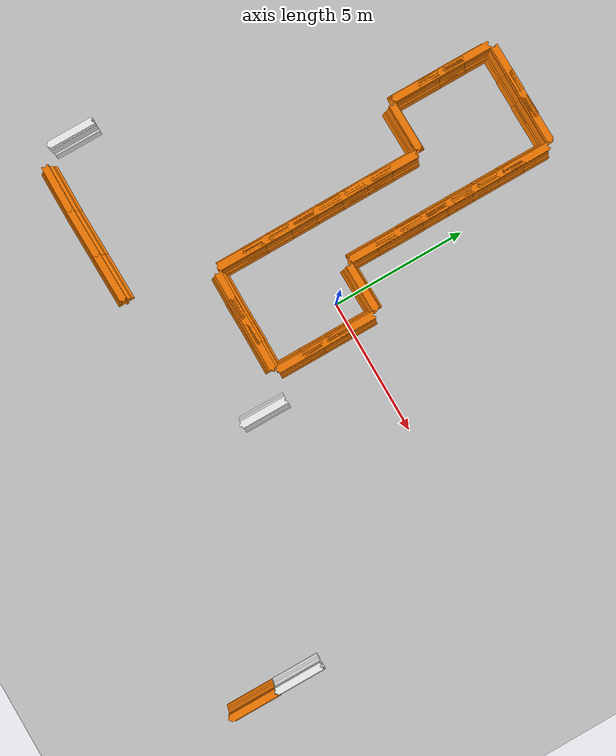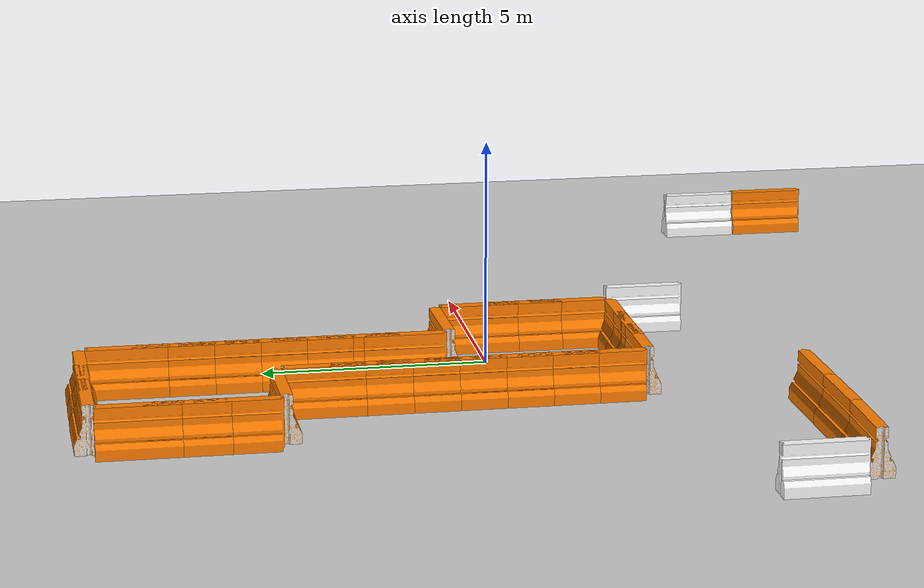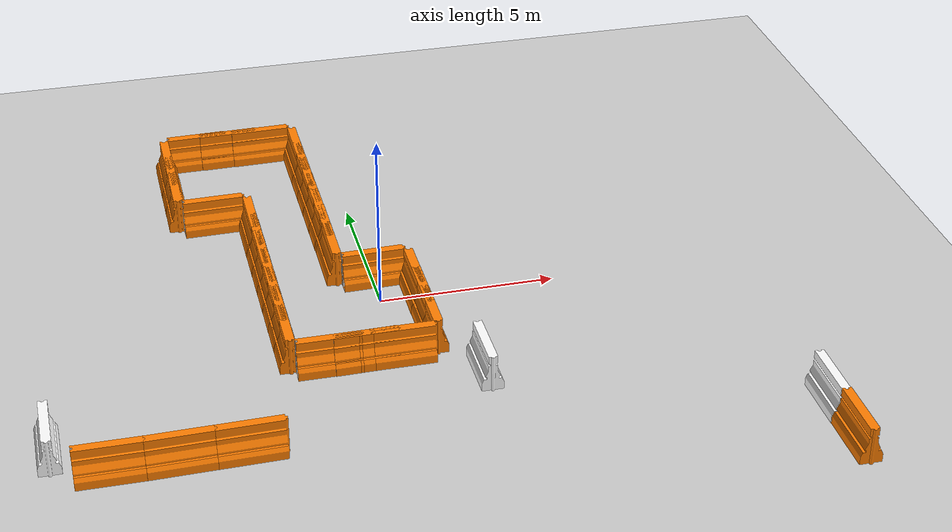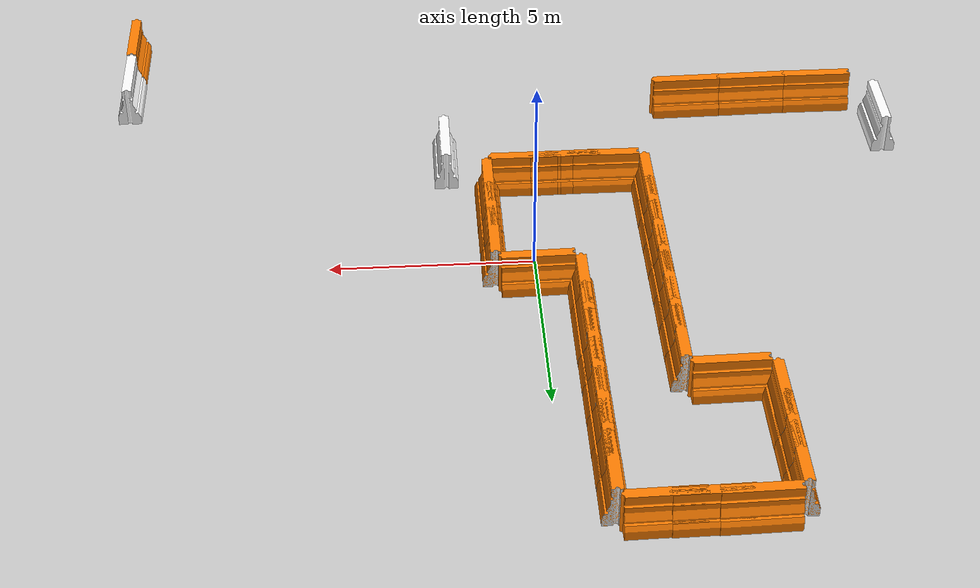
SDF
<sdf version="1.6">
 <world name="default">
  <light name="sun" type="directional">
   <pose>0 0 10 0 -0 0</pose>
   <diffuse>0.8 0.8 0.8 1</diffuse>
   <specular>0.2 0.2 0.2 1</specular>
   <attenuation>
    <range>1000</range>
    <constant>0.9</constant>
    <linear>0.01</linear>
    <quadratic>0.001</quadratic>
   </attenuation>
   <direction>-0.5 0.1 -0.9</direction>
  </light>
  <model name="ground_plane">
   <static>1</static>
   <link name="link">
    <collision name="collision">
     <geometry><plane><normal>0 0 1</normal><size>100 100</size></plane></geometry>
     <surface><friction><ode><mu>100</mu><mu2>50</mu2></ode></friction></surface>
    </collision>
    <visual name="visual">
     <cast_shadows>0</cast_shadows>
     <geometry><plane><normal>0 0 1</normal><size>100 100</size></plane></geometry>
     <material>
      <script><uri>file://media/materials/scripts/gazebo.material</uri><name>Gazebo/Grey</name></script>
     </material>
    </visual>
    <velocity_decay><linear>0</linear><angular>0</angular></velocity_decay>
   </link>
  </model>
  <physics name="default_physics" default="0" type="ode">
   <max_step_size>0.001</max_step_size>
   <real_time_factor>1</real_time_factor>
   <real_time_update_rate>1000</real_time_update_rate>
  </physics>
  <scene><ambient>0.4 0.4 0.4 1</ambient><background>0.7 0.7 0.7 1</background><shadows>1</shadows></scene>
  <spherical_coordinates>
   <surface_model>EARTH_WGS84</surface_model>
   <latitude_deg>0</latitude_deg>
   <longitude_deg>0</longitude_deg>
   <elevation>0</elevation>
   <heading_deg>0</heading_deg>
  </spherical_coordinates>
  <model name="drc_practice_organge_jersey_barrier">
   <static>1</static>
   <link name="link">
    <visual name="visual">
     <geometry>
      <mesh><uri>model://drc_practice_orange_jersey_barrier/meshes/jersey_barrier.dae</uri></mesh>
     </geometry>
    </visual>
    <collision name="collision">
     <geometry>
      <mesh><uri>model://drc_practice_orange_jersey_barrier/meshes/jersey_barrier.dae</uri></mesh>
     </geometry>
    </collision>
    <velocity_decay><linear>0</linear><angular>0</angular></velocity_decay>
   </link>
   <pose>-4.54889 -6.23392 0 0 -0 1.59364</pose>
  </model>
  <model name="drc_practice_white_jersey_barrier">
   <static>1</static>
   <link name="link">
    <visual name="visual">
     <geometry>
      <mesh><uri>model://drc_practice_white_jersey_barrier/meshes/jersey_barrier.dae</uri></mesh>
     </geometry>
    </visual>
    <collision name="collision">
     <geometry>
      <mesh><uri>model://drc_practice_white_jersey_barrier/meshes/jersey_barrier.dae</uri></mesh>
     </geometry>
    </collision>
    <velocity_decay><linear>0</linear><angular>0</angular></velocity_decay>
   </link>
   <pose>-9.48699 -4.9367 0 0 -0 0</pose>
  </model>
  <model name="drc_practice_organge_jersey_barrier_0">
   <static>1</static>
   <link name="link">
    <visual name="visual">
     <geometry>
      <mesh><uri>model://drc_practice_orange_jersey_barrier/meshes/jersey_barrier.dae</uri></mesh>
     </geometry>
    </visual>
    <collision name="collision">
     <geometry>
      <mesh><uri>model://drc_practice_orange_jersey_barrier/meshes/jersey_barrier.dae</uri></mesh>
     </geometry>
    </collision>
    <velocity_decay><linear>0</linear><angular>0</angular></velocity_decay>
   </link>
   <pose>-6.30934 -6.26351 0 0 -0 1.59467</pose>
  </model>
  <model name="drc_practice_organge_jersey_barrier_1">
   <static>1</static>
   <link name="link">
    <visual name="visual">
     <geometry>
      <mesh><uri>model://drc_practice_orange_jersey_barrier/meshes/jersey_barrier.dae</uri></mesh>
     </geometry>
    </visual>
    <collision name="collision">
     <geometry>
      <mesh><uri>model://drc_practice_orange_jersey_barrier/meshes/jersey_barrier.dae</uri></mesh>
     </geometry>
    </collision>
    <velocity_decay><linear>0</linear><angular>0</angular></velocity_decay>
   </link>
   <pose>-8.06556 -6.2736 0 0 -0 1.57109</pose>
  </model>
  <model name="drc_practice_white_jersey_barrier_0">
   <static>1</static>
   <link name="link">
    <visual name="visual">
     <geometry>
      <mesh><uri>model://drc_practice_white_jersey_barrier/meshes/jersey_barrier.dae</uri></mesh>
     </geometry>
    </visual>
    <collision name="collision">
     <geometry>
      <mesh><uri>model://drc_practice_white_jersey_barrier/meshes/jersey_barrier.dae</uri></mesh>
     </geometry>
    </collision>
    <velocity_decay><linear>0</linear><angular>0</angular></velocity_decay>
   </link>
   <pose>10.3176 -7.4365 0 0 -0 0</pose>
  </model>
  <model name="drc_practice_organge_jersey_barrier_2">
   <static>1</static>
   <link name="link">
    <visual name="visual">
     <geometry>
      <mesh><uri>model://drc_practice_orange_jersey_barrier/meshes/jersey_barrier.dae</uri></mesh>
     </geometry>
    </visual>
    <collision name="collision">
     <geometry>
      <mesh><uri>model://drc_practice_orange_jersey_barrier/meshes/jersey_barrier.dae</uri></mesh>
     </geometry>
    </collision>
    <velocity_decay><linear>0</linear><angular>0</angular></velocity_decay>
   </link>
   <pose>10.3218 -9.21435 0 0 -0 0</pose>
  </model>
  <gravity>0 0 -9.8</gravity>
  <magnetic_field>6e-06 2.3e-05 -4.2e-05</magnetic_field>
  <atmosphere type="adiabatic"/>
  <model name="drc_practice_white_jersey_barrier_0_clone">
   <static>1</static>
   <link name="link">
    <visual name="visual">
     <geometry>
      <mesh><uri>model://drc_practice_white_jersey_barrier/meshes/jersey_barrier.dae</uri></mesh>
     </geometry>
    </visual>
    <collision name="collision">
     <geometry>
      <mesh><uri>model://drc_practice_white_jersey_barrier/meshes/jersey_barrier.dae</uri></mesh>
     </geometry>
    </collision>
    <velocity_decay><linear>0</linear><angular>0</angular></velocity_decay>
   </link>
   <pose>2 -4 0 0 -0 0</pose>
  </model>
  <model name="drc_practice_organge_jersey_barrier_1_clone">
   <static>1</static>
   <link name="link">
    <visual name="visual">
     <geometry>
      <mesh><uri>model://drc_practice_orange_jersey_barrier/meshes/jersey_barrier.dae</uri></mesh>
     </geometry>
    </visual>
    <collision name="collision">
     <geometry>
      <mesh><uri>model://drc_practice_orange_jersey_barrier/meshes/jersey_barrier.dae</uri></mesh>
     </geometry>
    </collision>
    <velocity_decay><linear>0</linear><angular>0</angular></velocity_decay>
   </link>
   <pose>0 -3 0 0 -0 1.57109</pose>
  </model>
  <model name="drc_practice_organge_jersey_barrier_1_clone_0">
   <static>1</static>
   <link name="link">
    <visual name="visual">
     <geometry>
      <mesh><uri>model://drc_practice_orange_jersey_barrier/meshes/jersey_barrier.dae</uri></mesh>
     </geometry>
    </visual>
    <collision name="collision">
     <geometry>
      <mesh><uri>model://drc_practice_orange_jersey_barrier/meshes/jersey_barrier.dae</uri></mesh>
     </geometry>
    </collision>
    <velocity_decay><linear>0</linear><angular>0</angular></velocity_decay>
   </link>
   <pose>-2 -3 0 0 -0 1.57109</pose>
  </model>
  <model name="drc_practice_organge_jersey_barrier_2_clone">
   <static>1</static>
   <link name="link">
    <visual name="visual">
     <geometry>
      <mesh><uri>model://drc_practice_orange_jersey_barrier/meshes/jersey_barrier.dae</uri></mesh>
     </geometry>
    </visual>
    <collision name="collision">
     <geometry>
      <mesh><uri>model://drc_practice_orange_jersey_barrier/meshes/jersey_barrier.dae</uri></mesh>
     </geometry>
    </collision>
    <velocity_decay><linear>0</linear><angular>0</angular></velocity_decay>
   </link>
   <pose>-3 -2 0 0 -0 0</pose>
  </model>
  <model name="drc_practice_organge_jersey_barrier_2_clone_0">
   <static>1</static>
   <link name="link">
    <visual name="visual">
     <geometry>
      <mesh><uri>model://drc_practice_orange_jersey_barrier/meshes/jersey_barrier.dae</uri></mesh>
     </geometry>
    </visual>
    <collision name="collision">
     <geometry>
      <mesh><uri>model://drc_practice_orange_jersey_barrier/meshes/jersey_barrier.dae</uri></mesh>
     </geometry>
    </collision>
    <velocity_decay><linear>0</linear><angular>0</angular></velocity_decay>
   </link>
   <pose>-3 0 0 0 -0 0</pose>
  </model>
  <model name="drc_practice_organge_jersey_barrier_2_clone_1">
   <static>1</static>
   <link name="link">
    <visual name="visual">
     <geometry>
      <mesh><uri>model://drc_practice_orange_jersey_barrier/meshes/jersey_barrier.dae</uri></mesh>
     </geometry>
    </visual>
    <collision name="collision">
     <geometry>
      <mesh><uri>model://drc_practice_orange_jersey_barrier/meshes/jersey_barrier.dae</uri></mesh>
     </geometry>
    </collision>
    <velocity_decay><linear>0</linear><angular>0</angular></velocity_decay>
   </link>
   <pose>1 -2 0 0 -0 0</pose>
  </model>
  <model name="drc_practice_organge_jersey_barrier_2_clone_2">
   <static>1</static>
   <link name="link">
    <visual name="visual">
     <geometry>
      <mesh><uri>model://drc_practice_orange_jersey_barrier/meshes/jersey_barrier.dae</uri></mesh>
     </geometry>
    </visual>
    <collision name="collision">
     <geometry>
      <mesh><uri>model://drc_practice_orange_jersey_barrier/meshes/jersey_barrier.dae</uri></mesh>
     </geometry>
    </collision>
    <velocity_decay><linear>0</linear><angular>0</angular></velocity_decay>
   </link>
   <pose>1 0 0 0 -0 0</pose>
  </model>
  <model name="drc_practice_organge_jersey_barrier_clone">
   <static>1</static>
   <link name="link">
    <visual name="visual">
     <geometry>
      <mesh><uri>model://drc_practice_orange_jersey_barrier/meshes/jersey_barrier.dae</uri></mesh>
     </geometry>
    </visual>
    <collision name="collision">
     <geometry>
      <mesh><uri>model://drc_practice_orange_jersey_barrier/meshes/jersey_barrier.dae</uri></mesh>
     </geometry>
    </collision>
    <velocity_decay><linear>0</linear><angular>0</angular></velocity_decay>
   </link>
   <pose>0 1 0 0 -0 1.59364</pose>
  </model>
  <model name="drc_practice_organge_jersey_barrier_2_clone_3">
   <static>1</static>
   <link name="link">
    <visual name="visual">
     <geometry>
      <mesh><uri>model://drc_practice_orange_jersey_barrier/meshes/jersey_barrier.dae</uri></mesh>
     </geometry>
    </visual>
    <collision name="collision">
     <geometry>
      <mesh><uri>model://drc_practice_orange_jersey_barrier/meshes/jersey_barrier.dae</uri></mesh>
     </geometry>
    </collision>
    <velocity_decay><linear>0</linear><angular>0</angular></velocity_decay>
   </link>
   <pose>-3 2 0 0 -0 0</pose>
  </model>
  <model name="drc_practice_organge_jersey_barrier_2_clone_4">
   <static>1</static>
   <link name="link">
    <visual name="visual">
     <geometry>
      <mesh><uri>model://drc_practice_orange_jersey_barrier/meshes/jersey_barrier.dae</uri></mesh>
     </geometry>
    </visual>
    <collision name="collision">
     <geometry>
      <mesh><uri>model://drc_practice_orange_jersey_barrier/meshes/jersey_barrier.dae</uri></mesh>
     </geometry>
    </collision>
    <velocity_decay><linear>0</linear><angular>0</angular></velocity_decay>
   </link>
   <pose>-1 2 0 0 -0 0</pose>
  </model>
  <model name="drc_practice_organge_jersey_barrier_2_clone_5">
   <static>1</static>
   <link name="link">
    <visual name="visual">
     <geometry>
      <mesh><uri>model://drc_practice_orange_jersey_barrier/meshes/jersey_barrier.dae</uri></mesh>
     </geometry>
    </visual>
    <collision name="collision">
     <geometry>
      <mesh><uri>model://drc_practice_orange_jersey_barrier/meshes/jersey_barrier.dae</uri></mesh>
     </geometry>
    </collision>
    <velocity_decay><linear>0</linear><angular>0</angular></velocity_decay>
   </link>
   <pose>-3 4 0 0 -0 0</pose>
  </model>
  <model name="drc_practice_organge_jersey_barrier_2_clone_6">
   <static>1</static>
   <link name="link">
    <visual name="visual">
     <geometry>
      <mesh><uri>model://drc_practice_orange_jersey_barrier/meshes/jersey_barrier.dae</uri></mesh>
     </geometry>
    </visual>
    <collision name="collision">
     <geometry>
      <mesh><uri>model://drc_practice_orange_jersey_barrier/meshes/jersey_barrier.dae</uri></mesh>
     </geometry>
    </collision>
    <velocity_decay><linear>0</linear><angular>0</angular></velocity_decay>
   </link>
   <pose>-1 4 0 0 -0 0</pose>
  </model>
  <model name="drc_practice_organge_jersey_barrier_clone_0">
   <static>1</static>
   <link name="link">
    <visual name="visual">
     <geometry>
      <mesh><uri>model://drc_practice_orange_jersey_barrier/meshes/jersey_barrier.dae</uri></mesh>
     </geometry>
    </visual>
    <collision name="collision">
     <geometry>
      <mesh><uri>model://drc_practice_orange_jersey_barrier/meshes/jersey_barrier.dae</uri></mesh>
     </geometry>
    </collision>
    <velocity_decay><linear>0</linear><angular>0</angular></velocity_decay>
   </link>
   <pose>-4 5 0 0 -0 1.59364</pose>
  </model>
  <model name="drc_practice_organge_jersey_barrier_2_clone_7">
   <static>1</static>
   <link name="link">
    <visual name="visual">
     <geometry>
      <mesh><uri>model://drc_practice_orange_jersey_barrier/meshes/jersey_barrier.dae</uri></mesh>
     </geometry>
    </visual>
    <collision name="collision">
     <geometry>
      <mesh><uri>model://drc_practice_orange_jersey_barrier/meshes/jersey_barrier.dae</uri></mesh>
     </geometry>
    </collision>
    <velocity_decay><linear>0</linear><angular>0</angular></velocity_decay>
   </link>
   <pose>-5 6 0 0 -0 0</pose>
  </model>
  <model name="drc_practice_organge_jersey_barrier_2_clone_8">
   <static>1</static>
   <link name="link">
    <visual name="visual">
     <geometry>
      <mesh><uri>model://drc_practice_orange_jersey_barrier/meshes/jersey_barrier.dae</uri></mesh>
     </geometry>
    </visual>
    <collision name="collision">
     <geometry>
      <mesh><uri>model://drc_practice_orange_jersey_barrier/meshes/jersey_barrier.dae</uri></mesh>
     </geometry>
    </collision>
    <velocity_decay><linear>0</linear><angular>0</angular></velocity_decay>
   </link>
   <pose>-5 8 0 0 -0 0</pose>
  </model>
  <model name="drc_practice_organge_jersey_barrier_clone_1">
   <static>1</static>
   <link name="link">
    <visual name="visual">
     <geometry>
      <mesh><uri>model://drc_practice_orange_jersey_barrier/meshes/jersey_barrier.dae</uri></mesh>
     </geometry>
    </visual>
    <collision name="collision">
     <geometry>
      <mesh><uri>model://drc_practice_orange_jersey_barrier/meshes/jersey_barrier.dae</uri></mesh>
     </geometry>
    </collision>
    <velocity_decay><linear>0</linear><angular>0</angular></velocity_decay>
   </link>
   <pose>-4 9 0 0 -0 1.59364</pose>
  </model>
  <model name="drc_practice_organge_jersey_barrier_clone_2">
   <static>1</static>
   <link name="link">
    <visual name="visual">
     <geometry>
      <mesh><uri>model://drc_practice_orange_jersey_barrier/meshes/jersey_barrier.dae</uri></mesh>
     </geometry>
    </visual>
    <collision name="collision">
     <geometry>
      <mesh><uri>model://drc_practice_orange_jersey_barrier/meshes/jersey_barrier.dae</uri></mesh>
     </geometry>
    </collision>
    <velocity_decay><linear>0</linear><angular>0</angular></velocity_decay>
   </link>
   <pose>-2 9 0 0 -0 1.59364</pose>
  </model>
  <model name="drc_practice_organge_jersey_barrier_2_clone_2_clone">
   <static>1</static>
   <link name="link">
    <visual name="visual">
     <geometry>
      <mesh><uri>model://drc_practice_orange_jersey_barrier/meshes/jersey_barrier.dae</uri></mesh>
     </geometry>
    </visual>
    <collision name="collision">
     <geometry>
      <mesh><uri>model://drc_practice_orange_jersey_barrier/meshes/jersey_barrier.dae</uri></mesh>
     </geometry>
    </collision>
    <velocity_decay><linear>0</linear><angular>0</angular></velocity_decay>
   </link>
   <pose>-1 6 0 0 -0 0</pose>
  </model>
  <model name="drc_practice_organge_jersey_barrier_2_clone_2_clone_0">
   <static>1</static>
   <link name="link">
    <visual name="visual">
     <geometry>
      <mesh><uri>model://drc_practice_orange_jersey_barrier/meshes/jersey_barrier.dae</uri></mesh>
     </geometry>
    </visual>
    <collision name="collision">
     <geometry>
      <mesh><uri>model://drc_practice_orange_jersey_barrier/meshes/jersey_barrier.dae</uri></mesh>
     </geometry>
    </collision>
    <velocity_decay><linear>0</linear><angular>0</angular></velocity_decay>
   </link>
   <pose>-1 8 0 0 -0 0</pose>
  </model>
  <model name="drc_practice_organge_jersey_barrier_2_clone_0_clone">
   <static>1</static>
   <link name="link">
    <visual name="visual">
     <geometry>
      <mesh><uri>model://drc_practice_orange_jersey_barrier/meshes/jersey_barrier.dae</uri></mesh>
     </geometry>
    </visual>
    <collision name="collision">
     <geometry>
      <mesh><uri>model://drc_practice_orange_jersey_barrier/meshes/jersey_barrier.dae</uri></mesh>
     </geometry>
    </collision>
    <velocity_decay><linear>0</linear><angular>0</angular></velocity_decay>
   </link>
   <pose>-3 -1 0 0 -0 0</pose>
  </model>
  <model name="drc_practice_organge_jersey_barrier_2_clone_0_clone_0">
   <static>1</static>
   <link name="link">
    <visual name="visual">
     <geometry>
      <mesh><uri>model://drc_practice_orange_jersey_barrier/meshes/jersey_barrier.dae</uri></mesh>
     </geometry>
    </visual>
    <collision name="collision">
     <geometry>
      <mesh><uri>model://drc_practice_orange_jersey_barrier/meshes/jersey_barrier.dae</uri></mesh>
     </geometry>
    </collision>
    <velocity_decay><linear>0</linear><angular>0</angular></velocity_decay>
   </link>
   <pose>-3 1 0 0 -0 0</pose>
  </model>
  <model name="drc_practice_organge_jersey_barrier_2_clone_0_clone_1">
   <static>1</static>
   <link name="link">
    <visual name="visual">
     <geometry>
      <mesh><uri>model://drc_practice_orange_jersey_barrier/meshes/jersey_barrier.dae</uri></mesh>
     </geometry>
    </visual>
    <collision name="collision">
     <geometry>
      <mesh><uri>model://drc_practice_orange_jersey_barrier/meshes/jersey_barrier.dae</uri></mesh>
     </geometry>
    </collision>
    <velocity_decay><linear>0</linear><angular>0</angular></velocity_decay>
   </link>
   <pose>-3 3 0 0 -0 0</pose>
  </model>
  <model name="drc_practice_organge_jersey_barrier_2_clone_0_clone_2">
   <static>1</static>
   <link name="link">
    <visual name="visual">
     <geometry>
      <mesh><uri>model://drc_practice_orange_jersey_barrier/meshes/jersey_barrier.dae</uri></mesh>
     </geometry>
    </visual>
    <collision name="collision">
     <geometry>
      <mesh><uri>model://drc_practice_orange_jersey_barrier/meshes/jersey_barrier.dae</uri></mesh>
     </geometry>
    </collision>
    <velocity_decay><linear>0</linear><angular>0</angular></velocity_decay>
   </link>
   <pose>-5 7 0 0 -0 0</pose>
  </model>
  <model name="drc_practice_organge_jersey_barrier_clone_2_clone">
   <static>1</static>
   <link name="link">
    <visual name="visual">
     <geometry>
      <mesh><uri>model://drc_practice_orange_jersey_barrier/meshes/jersey_barrier.dae</uri></mesh>
     </geometry>
    </visual>
    <collision name="collision">
     <geometry>
      <mesh><uri>model://drc_practice_orange_jersey_barrier/meshes/jersey_barrier.dae</uri></mesh>
     </geometry>
    </collision>
    <velocity_decay><linear>0</linear><angular>0</angular></velocity_decay>
   </link>
   <pose>-3 9 0 0 -0 1.59364</pose>
  </model>
  <model name="drc_practice_organge_jersey_barrier_clone_2_clone_0">
   <static>1</static>
   <link name="link">
    <visual name="visual">
     <geometry>
      <mesh><uri>model://drc_practice_orange_jersey_barrier/meshes/jersey_barrier.dae</uri></mesh>
     </geometry>
    </visual>
    <collision name="collision">
     <geometry>
      <mesh><uri>model://drc_practice_orange_jersey_barrier/meshes/jersey_barrier.dae</uri></mesh>
     </geometry>
    </collision>
    <velocity_decay><linear>0</linear><angular>0</angular></velocity_decay>
   </link>
   <pose>-1 -3 0 0 -0 1.59364</pose>
  </model>
  <model name="drc_practice_organge_jersey_barrier_2_clone_0_clone_clone">
   <static>1</static>
   <link name="link">
    <visual name="visual">
     <geometry>
      <mesh><uri>model://drc_practice_orange_jersey_barrier/meshes/jersey_barrier.dae</uri></mesh>
     </geometry>
    </visual>
    <collision name="collision">
     <geometry>
      <mesh><uri>model://drc_practice_orange_jersey_barrier/meshes/jersey_barrier.dae</uri></mesh>
     </geometry>
    </collision>
    <velocity_decay><linear>0</linear><angular>0</angular></velocity_decay>
   </link>
   <pose>1 -1 0 0 -0 0</pose>
  </model>
  <model name="drc_practice_organge_jersey_barrier_2_clone_0_clone_clone_0">
   <static>1</static>
   <link name="link">
    <visual name="visual">
     <geometry>
      <mesh><uri>model://drc_practice_orange_jersey_barrier/meshes/jersey_barrier.dae</uri></mesh>
     </geometry>
    </visual>
    <collision name="collision">
     <geometry>
      <mesh><uri>model://drc_practice_orange_jersey_barrier/meshes/jersey_barrier.dae</uri></mesh>
     </geometry>
    </collision>
    <velocity_decay><linear>0</linear><angular>0</angular></velocity_decay>
   </link>
   <pose>-0.99404 3.02596 0 0 -0 0</pose>
  </model>
  <model name="drc_practice_organge_jersey_barrier_2_clone_0_clone_clone_1">
   <static>1</static>
   <link name="link">
    <visual name="visual">
     <geometry>
      <mesh><uri>model://drc_practice_orange_jersey_barrier/meshes/jersey_barrier.dae</uri></mesh>
     </geometry>
    </visual>
    <collision name="collision">
     <geometry>
      <mesh><uri>model://drc_practice_orange_jersey_barrier/meshes/jersey_barrier.dae</uri></mesh>
     </geometry>
    </collision>
    <velocity_decay><linear>0</linear><angular>0</angular></velocity_decay>
   </link>
   <pose>-1 5 0 0 -0 0</pose>
  </model>
  <model name="drc_practice_organge_jersey_barrier_2_clone_0_clone_clone_2">
   <static>1</static>
   <link name="link">
    <visual name="visual">
     <geometry>
      <mesh><uri>model://drc_practice_orange_jersey_barrier/meshes/jersey_barrier.dae</uri></mesh>
     </geometry>
    </visual>
    <collision name="collision">
     <geometry>
      <mesh><uri>model://drc_practice_orange_jersey_barrier/meshes/jersey_barrier.dae</uri></mesh>
     </geometry>
    </collision>
    <velocity_decay><linear>0</linear><angular>0</angular></velocity_decay>
   </link>
   <pose>-1 7 0 0 -0 0</pose>
  </model>
 </world>
</sdf>
